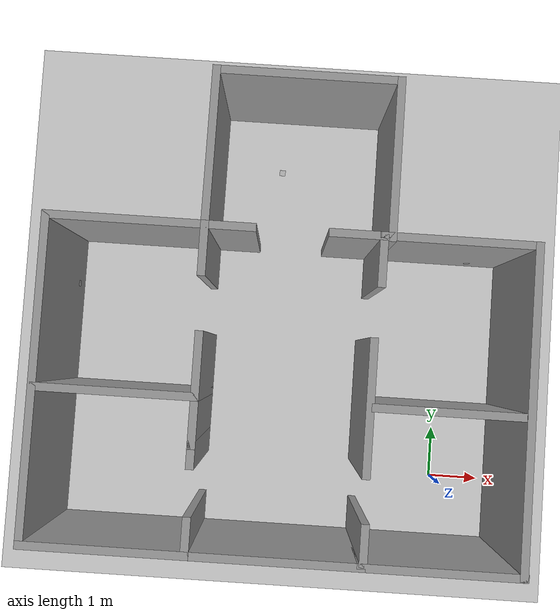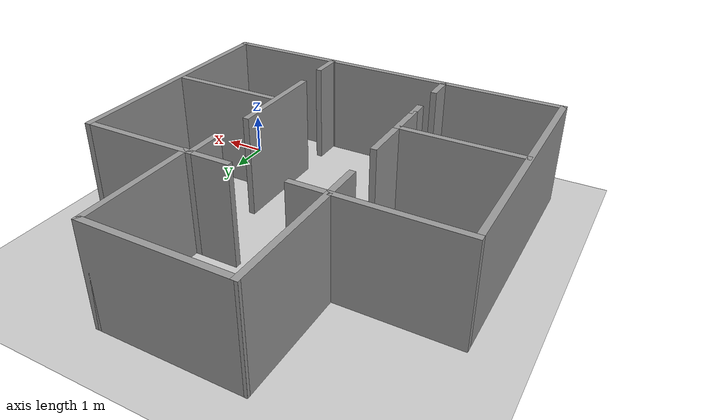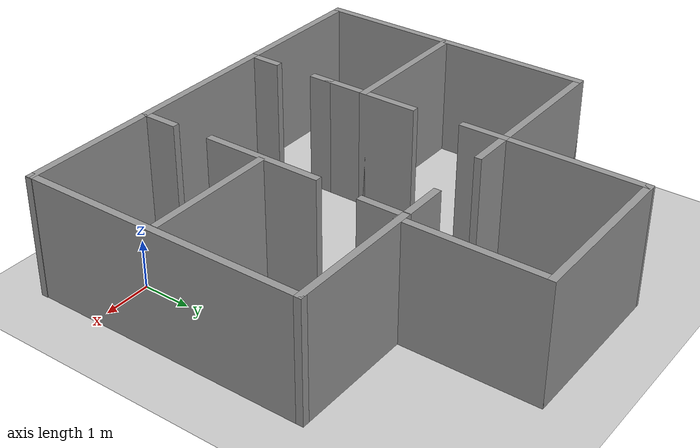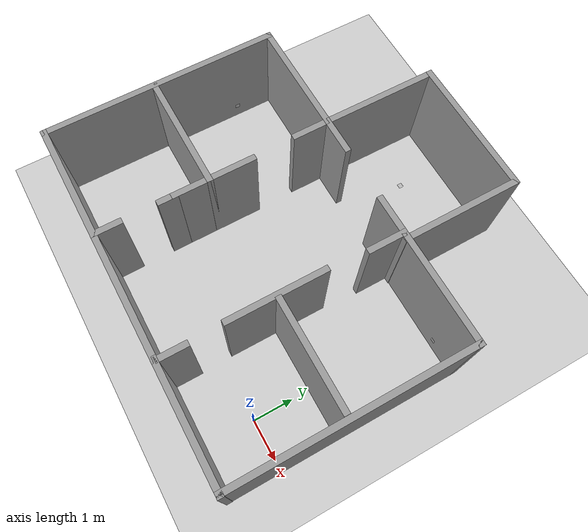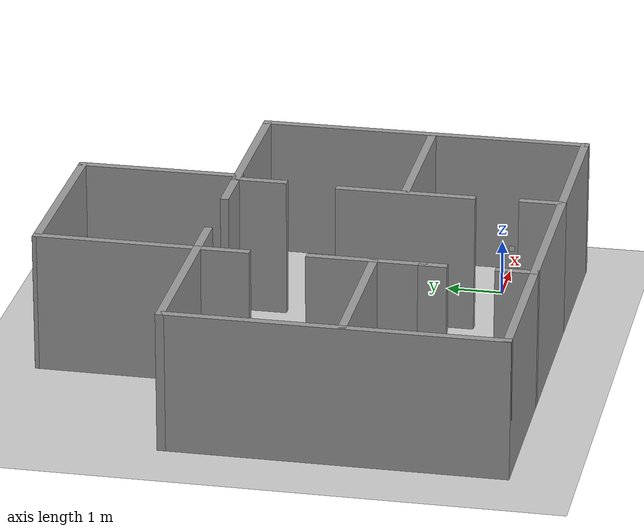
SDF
<sdf version="1.7">
 <world name="default">
  <light name="sun" type="directional">
   <pose>0 0 10 0 -0 0</pose>
   <diffuse>0.8 0.8 0.8 1</diffuse>
   <specular>0.2 0.2 0.2 1</specular>
   <attenuation>
    <range>1000</range>
    <constant>0.9</constant>
    <linear>0.01</linear>
    <quadratic>0.001</quadratic>
   </attenuation>
   <direction>-0.5 0.1 -0.9</direction>
   <spot><inner_angle>0</inner_angle><outer_angle>0</outer_angle><falloff>0</falloff></spot>
  </light>
  <model name="ground_plane">
   <static>1</static>
   <link name="link">
    <collision name="collision">
     <geometry><plane><normal>0 0 1</normal><size>100 100</size></plane></geometry>
     <surface>
      <contact><collide_bitmask>65535</collide_bitmask></contact>
      <friction><ode><mu>100</mu><mu2>50</mu2></ode></friction>
     </surface>
    </collision>
    <visual name="visual">
     <cast_shadows>0</cast_shadows>
     <geometry><plane><normal>0 0 1</normal><size>100 100</size></plane></geometry>
     <material>
      <script><uri>file://media/materials/scripts/gazebo.material</uri><name>Gazebo/Grey</name></script>
     </material>
    </visual>
   </link>
  </model>
  <gravity>0 0 -9.8</gravity>
  <magnetic_field>6e-06 2.3e-05 -4.2e-05</magnetic_field>
  <atmosphere type="adiabatic"/>
  <physics type="ode">
   <max_step_size>0.001</max_step_size>
   <real_time_factor>1</real_time_factor>
   <real_time_update_rate>1000</real_time_update_rate>
  </physics>
  <scene><ambient>0.4 0.4 0.4 1</ambient><background>0.7 0.7 0.7 1</background><shadows>1</shadows></scene>
  <spherical_coordinates>
   <surface_model>EARTH_WGS84</surface_model>
   <latitude_deg>0</latitude_deg>
   <longitude_deg>0</longitude_deg>
   <elevation>0</elevation>
   <heading_deg>0</heading_deg>
  </spherical_coordinates>
  <model name="World1">
   <pose>-3.20735 3.05419 0 0 -0 0</pose>
   <link name="Wall_102">
    <collision name="Wall_102_Collision">
     <geometry><box><size>3 0.15 2.5</size></box></geometry>
     <pose>0 0 1.25 0 -0 0</pose>
    </collision>
    <visual name="Wall_102_Visual">
     <pose>0 0 1.25 0 -0 0</pose>
     <geometry><box><size>3 0.15 2.5</size></box></geometry>
     <material>
      <script><uri>file://media/materials/scripts/gazebo.material</uri><name>Gazebo/Grey</name></script>
      <ambient>1 1 1 1</ambient>
     </material>
     <meta><layer>0</layer></meta>
    </visual>
    <pose>1.78589 2.91602 0 0 -0 -1.5708</pose>
   </link>
   <link name="Wall_12">
    <collision name="Wall_12_Collision">
     <geometry><box><size>3 0.15 2.5</size></box></geometry>
     <pose>0 0 1.25 0 -0 0</pose>
    </collision>
    <visual name="Wall_12_Visual">
     <pose>0 0 1.25 0 -0 0</pose>
     <geometry><box><size>3 0.15 2.5</size></box></geometry>
     <material>
      <script><uri>file://media/materials/scripts/gazebo.material</uri><name>Gazebo/Grey</name></script>
      <ambient>1 1 1 1</ambient>
     </material>
     <meta><layer>0</layer></meta>
    </visual>
    <pose>-2.96637 -1.56886 0 0 -0 0</pose>
   </link>
   <link name="Wall_13">
    <collision name="Wall_13_Collision">
     <geometry><box><size>1 0.15 2.5</size></box></geometry>
     <pose>0 0 1.25 0 -0 0</pose>
    </collision>
    <visual name="Wall_13_Visual">
     <pose>0 0 1.25 0 -0 0</pose>
     <geometry><box><size>1 0.15 2.5</size></box></geometry>
     <material>
      <script><uri>file://media/materials/scripts/gazebo.material</uri><name>Gazebo/Grey</name></script>
      <ambient>1 1 1 1</ambient>
     </material>
     <meta><layer>0</layer></meta>
    </visual>
    <pose>-1.54137 -1.99386 0 0 -0 -1.5708</pose>
   </link>
   <link name="Wall_17">
    <collision name="Wall_17_Collision">
     <geometry><box><size>3 0.15 2.5</size></box></geometry>
     <pose>0 0 1.25 0 -0 0</pose>
    </collision>
    <visual name="Wall_17_Visual">
     <pose>0 0 1.25 0 -0 0</pose>
     <geometry><box><size>3 0.15 2.5</size></box></geometry>
     <material>
      <script><uri>file://media/materials/scripts/gazebo.material</uri><name>Gazebo/Grey</name></script>
      <ambient>1 1 1 1</ambient>
     </material>
     <meta><layer>0</layer></meta>
    </visual>
    <pose>-3.0066 1.50851 0 0 -0 0</pose>
   </link>
   <link name="Wall_18">
    <collision name="Wall_18_Collision">
     <geometry><box><size>1 0.15 2.5</size></box></geometry>
     <pose>0 0 1.25 0 -0 0</pose>
    </collision>
    <visual name="Wall_18_Visual">
     <pose>0 0 1.25 0 -0 0</pose>
     <geometry><box><size>1 0.15 2.5</size></box></geometry>
     <material>
      <script><uri>file://media/materials/scripts/gazebo.material</uri><name>Gazebo/Grey</name></script>
      <ambient>1 1 1 1</ambient>
     </material>
     <meta><layer>0</layer></meta>
    </visual>
    <pose>-1.5816 1.08352 0 0 -0 -1.5708</pose>
   </link>
   <link name="Wall_20">
    <collision name="Wall_20_Collision">
     <geometry><box><size>1.25 0.15 2.5</size></box></geometry>
     <pose>0 0 1.25 0 -0 0</pose>
    </collision>
    <visual name="Wall_20_Visual">
     <pose>0 0 1.25 0 -0 0</pose>
     <geometry><box><size>1.25 0.15 2.5</size></box></geometry>
     <material>
      <script><uri>file://media/materials/scripts/gazebo.material</uri><name>Gazebo/Grey</name></script>
      <ambient>1 1 1 1</ambient>
     </material>
     <meta><layer>0</layer></meta>
    </visual>
    <pose>-1.54137 -1.01886 0 0 -0 1.5708</pose>
   </link>
   <link name="Wall_22">
    <collision name="Wall_22_Collision">
     <geometry><box><size>0.5 0.15 2.5</size></box></geometry>
     <pose>0 0 1.25 0 -0 0</pose>
    </collision>
    <visual name="Wall_22_Visual">
     <pose>0 0 1.25 0 -0 0</pose>
     <geometry><box><size>0.5 0.15 2.5</size></box></geometry>
     <material>
      <script><uri>file://media/materials/scripts/gazebo.material</uri><name>Gazebo/Grey</name></script>
      <ambient>1 1 1 1</ambient>
     </material>
     <meta><layer>0</layer></meta>
    </visual>
    <pose>-1.54137 -2.59386 0 0 -0 -1.5708</pose>
   </link>
   <link name="Wall_33">
    <collision name="Wall_33_Collision">
     <geometry><box><size>1 0.15 2.5</size></box></geometry>
     <pose>0 0 1.25 0 -0 0</pose>
    </collision>
    <visual name="Wall_33_Visual">
     <pose>0 0 1.25 0 -0 0</pose>
     <geometry><box><size>1 0.15 2.5</size></box></geometry>
     <material>
      <script><uri>file://media/materials/scripts/gazebo.material</uri><name>Gazebo/Grey</name></script>
      <ambient>1 1 1 1</ambient>
     </material>
     <meta><layer>0</layer></meta>
    </visual>
    <pose>-1.1566 1.50851 0 0 -0 0</pose>
   </link>
   <link name="Wall_42">
    <collision name="Wall_42_Collision">
     <geometry><box><size>0.75 0.15 2.5</size></box></geometry>
     <pose>0 0 1.25 0 -0 0</pose>
    </collision>
    <visual name="Wall_42_Visual">
     <pose>0 0 1.25 0 -0 0</pose>
     <geometry><box><size>0.75 0.15 2.5</size></box></geometry>
     <material>
      <script><uri>file://media/materials/scripts/gazebo.material</uri><name>Gazebo/Grey</name></script>
      <ambient>1 1 1 1</ambient>
     </material>
     <meta><layer>0</layer></meta>
    </visual>
    <pose>-1.5284 -4.04149 0 0 -0 1.5708</pose>
   </link>
   <link name="Wall_47">
    <collision name="Wall_47_Collision">
     <geometry><box><size>2.5 0.15 2.5</size></box></geometry>
     <pose>0 0 1.25 0 -0 0</pose>
    </collision>
    <visual name="Wall_47_Visual">
     <pose>0 0 1.25 0 -0 0</pose>
     <geometry><box><size>2.5 0.15 2.5</size></box></geometry>
     <material>
      <script><uri>file://media/materials/scripts/gazebo.material</uri><name>Gazebo/Grey</name></script>
      <ambient>1 1 1 1</ambient>
     </material>
     <meta><layer>0</layer></meta>
    </visual>
    <pose>1.56651 -1.56563 0 0 -0 -1.5708</pose>
   </link>
   <link name="Wall_49">
    <collision name="Wall_49_Collision">
     <geometry><box><size>0.75 0.15 2.5</size></box></geometry>
     <pose>0 0 1.25 0 -0 0</pose>
    </collision>
    <visual name="Wall_49_Visual">
     <pose>0 0 1.25 0 -0 0</pose>
     <geometry><box><size>0.75 0.15 2.5</size></box></geometry>
     <material>
      <script><uri>file://media/materials/scripts/gazebo.material</uri><name>Gazebo/Grey</name></script>
      <ambient>1 1 1 1</ambient>
     </material>
     <meta><layer>0</layer></meta>
    </visual>
    <pose>1.60149 -3.96245 0 0 -0 -1.5708</pose>
   </link>
   <link name="Wall_51">
    <collision name="Wall_51_Collision">
     <geometry><box><size>3.25 0.15 2.5</size></box></geometry>
     <pose>0 0 1.25 0 -0 0</pose>
    </collision>
    <visual name="Wall_51_Visual">
     <pose>0 0 1.25 0 -0 0</pose>
     <geometry><box><size>3.25 0.15 2.5</size></box></geometry>
     <material>
      <script><uri>file://media/materials/scripts/gazebo.material</uri><name>Gazebo/Grey</name></script>
      <ambient>1 1 1 1</ambient>
     </material>
     <meta><layer>0</layer></meta>
    </visual>
    <pose>0.0216 -4.34149 0 0 -0 0</pose>
   </link>
   <link name="Wall_62">
    <collision name="Wall_62_Collision">
     <geometry><box><size>1 0.15 2.5</size></box></geometry>
     <pose>0 0 1.25 0 -0 0</pose>
    </collision>
    <visual name="Wall_62_Visual">
     <pose>0 0 1.25 0 -0 0</pose>
     <geometry><box><size>1 0.15 2.5</size></box></geometry>
     <material>
      <script><uri>file://media/materials/scripts/gazebo.material</uri><name>Gazebo/Grey</name></script>
      <ambient>1 1 1 1</ambient>
     </material>
     <meta><layer>0</layer></meta>
    </visual>
    <pose>1.64156 1.08352 0 0 -0 -1.5708</pose>
   </link>
   <link name="Wall_72">
    <collision name="Wall_72_Collision">
     <geometry><box><size>2.75 0.15 2.5</size></box></geometry>
     <pose>0 0 1.25 0 -0 0</pose>
    </collision>
    <visual name="Wall_72_Visual">
     <pose>0 0 1.25 0 -0 0</pose>
     <geometry><box><size>2.75 0.15 2.5</size></box></geometry>
     <material>
      <script><uri>file://media/materials/scripts/gazebo.material</uri><name>Gazebo/Grey</name></script>
      <ambient>1 1 1 1</ambient>
     </material>
     <meta><layer>0</layer></meta>
    </visual>
    <pose>2.9678 -1.55134 0 0 -0 0</pose>
   </link>
   <link name="Wall_75">
    <collision name="Wall_75_Collision">
     <geometry><box><size>3 0.15 2.5</size></box></geometry>
     <pose>0 0 1.25 0 -0 0</pose>
    </collision>
    <visual name="Wall_75_Visual">
     <pose>0 0 1.25 0 -0 0</pose>
     <geometry><box><size>3 0.15 2.5</size></box></geometry>
     <material>
      <script><uri>file://media/materials/scripts/gazebo.material</uri><name>Gazebo/Grey</name></script>
      <ambient>1 1 1 1</ambient>
     </material>
     <meta><layer>0</layer></meta>
    </visual>
    <pose>2.9966 -4.34149 0 0 -0 0</pose>
   </link>
   <link name="Wall_76">
    <collision name="Wall_76_Collision">
     <geometry><box><size>0.16 0.15 2.5</size></box></geometry>
     <pose>0 0 1.25 0 -0 0</pose>
    </collision>
    <visual name="Wall_76_Visual">
     <pose>0 0 1.25 0 -0 0</pose>
     <geometry><box><size>0.16 0.15 2.5</size></box></geometry>
     <material>
      <script><uri>file://media/materials/scripts/gazebo.material</uri><name>Gazebo/Grey</name></script>
      <ambient>0 0 0 1</ambient>
     </material>
     <meta><layer>0</layer></meta>
    </visual>
    <pose>4.4266 -4.34149 0 0 -0 0</pose>
   </link>
   <link name="Wall_77">
    <collision name="Wall_77_Collision">
     <geometry><box><size>6 0.15 2.5</size></box></geometry>
     <pose>0 0 1.25 0 -0 0</pose>
    </collision>
    <visual name="Wall_77_Visual">
     <pose>0 0 1.25 0 -0 0</pose>
     <geometry><box><size>6 0.15 2.5</size></box></geometry>
     <material>
      <script><uri>file://media/materials/scripts/gazebo.material</uri><name>Gazebo/Grey</name></script>
      <ambient>1 1 1 1</ambient>
     </material>
     <meta><layer>0</layer></meta>
    </visual>
    <pose>4.4216 -1.41649 0 0 -0 1.5708</pose>
   </link>
   <link name="Wall_79">
    <collision name="Wall_79_Collision">
     <geometry><box><size>2.91261 0.15 2.5</size></box></geometry>
     <pose>0 0 1.25 0 -0 0</pose>
    </collision>
    <visual name="Wall_79_Visual">
     <pose>0 0 1.25 0 -0 0</pose>
     <geometry><box><size>2.91261 0.15 2.5</size></box></geometry>
     <material>
      <script><uri>file://media/materials/scripts/gazebo.material</uri><name>Gazebo/Grey</name></script>
      <ambient>1 1 1 1</ambient>
     </material>
     <meta><layer>0</layer></meta>
    </visual>
    <pose>3.04033 1.50851 0 0 -0 3.14159</pose>
   </link>
   <link name="Wall_8">
    <collision name="Wall_8_Collision">
     <geometry><box><size>6 0.15 2.5</size></box></geometry>
     <pose>0 0 1.25 0 -0 0</pose>
    </collision>
    <visual name="Wall_8_Visual">
     <pose>0 0 1.25 0 -0 0</pose>
     <geometry><box><size>6 0.15 2.5</size></box></geometry>
     <material>
      <script><uri>file://media/materials/scripts/gazebo.material</uri><name>Gazebo/Grey</name></script>
      <ambient>1 1 1 1</ambient>
     </material>
     <meta><layer>0</layer></meta>
    </visual>
    <pose>-4.4316 -1.41649 0 0 -0 -1.5708</pose>
   </link>
   <link name="Wall_84">
    <collision name="Wall_84_Collision">
     <geometry><box><size>1.08745 0.15 2.5</size></box></geometry>
     <pose>0 0 1.25 0 -0 0</pose>
    </collision>
    <visual name="Wall_84_Visual">
     <pose>0 0 1.25 0 -0 0</pose>
     <geometry><box><size>1.08745 0.15 2.5</size></box></geometry>
     <material>
      <script><uri>file://media/materials/scripts/gazebo.material</uri><name>Gazebo/Grey</name></script>
      <ambient>1 1 1 1</ambient>
     </material>
     <meta><layer>0</layer></meta>
    </visual>
    <pose>1.19033 1.50851 0 0 -0 3.14159</pose>
   </link>
   <link name="Wall_9">
    <collision name="Wall_9_Collision">
     <geometry><box><size>3.0532 0.15 2.5</size></box></geometry>
     <pose>0 0 1.25 0 -0 0</pose>
    </collision>
    <visual name="Wall_9_Visual">
     <pose>0 0 1.25 0 -0 0</pose>
     <geometry><box><size>3.0532 0.15 2.5</size></box></geometry>
     <material>
      <script><uri>file://media/materials/scripts/gazebo.material</uri><name>Gazebo/Grey</name></script>
      <ambient>1 1 1 1</ambient>
     </material>
     <meta><layer>0</layer></meta>
    </visual>
    <pose>-2.98 -4.34149 0 0 -0 0</pose>
   </link>
   <link name="Wall_98">
    <collision name="Wall_98_Collision">
     <geometry><box><size>2.98256 0.15 2.5</size></box></geometry>
     <pose>0 0 1.25 0 -0 0</pose>
    </collision>
    <visual name="Wall_98_Visual">
     <pose>0 0 1.25 0 -0 0</pose>
     <geometry><box><size>2.98256 0.15 2.5</size></box></geometry>
     <material>
      <script><uri>file://media/materials/scripts/gazebo.material</uri><name>Gazebo/Grey</name></script>
      <ambient>1 1 1 1</ambient>
     </material>
     <meta><layer>0</layer></meta>
    </visual>
    <pose>-1.57285 2.92477 0 0 -0 1.56462</pose>
   </link>
   <link name="Wall_99">
    <collision name="Wall_99_Collision">
     <geometry><box><size>3.5 0.15 2.5</size></box></geometry>
     <pose>0 0 1.25 0 -0 0</pose>
    </collision>
    <visual name="Wall_99_Visual">
     <pose>0 0 1.25 0 -0 0</pose>
     <geometry><box><size>3.5 0.15 2.5</size></box></geometry>
     <material>
      <script><uri>file://media/materials/scripts/gazebo.material</uri><name>Gazebo/Grey</name></script>
      <ambient>1 1 1 1</ambient>
     </material>
     <meta><layer>0</layer></meta>
    </visual>
    <pose>0.11089 4.34102 0 0 -0 0</pose>
   </link>
   <static>1</static>
  </model>
  <include><uri>model://marker0</uri><pose>1.13 0 0.4 0 1.5707 0</pose></include>
  <include><uri>model://marker1</uri><pose>-5 -1.2 0.4 1.5707 -1.5707 3.14</pose></include>
  <include><uri>model://marker2</uri><pose>-7.55 3.54 0.4 1.57 1.5707 -1.5707</pose></include>
  <include><uri>model://marker3</uri><pose>0.45 4.48 0.4 0 1.5707 1.5707</pose></include>
  <include><uri>model://marker4</uri><pose>-3.5 6.24 0 0.0 0 0.0</pose></include>
 </world>
</sdf>

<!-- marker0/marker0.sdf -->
<sdf version="1.4">
  <model name="marker0">
    <static>1</static>
    <link name="marker">
      <gravity>false</gravity>
      <visual name="visual">
        <geometry>
          <box>
            <size>0.10 0.10 0.001</size>
            <!-- SIZE OF THE MARKER + MARGIN -->
          </box>
        </geometry>
        <material>
          <script>
	    <uri>model://marker0/material/scripts</uri>
	    <uri>model://marker0/material/textures</uri>
            <name>Aruco/marker0</name>
          </script>
        </material>
      </visual>
      <collision name="collision">
        <geometry>
          <box>
            <size>0.10 0.10 0.02</size>
            <!-- SIZE OF THE MARKER + MARGIN -->
          </box>
        </geometry>
      </collision>
       <self_collide>1</self_collide>
      <kinematic>0</kinematic>
      <gravity>0</gravity>
    </link>
  </model>
</sdf>

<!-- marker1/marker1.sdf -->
<sdf version="1.4">
  <model name="marker1">
    <static>1</static>
    <link name="marker">
      <gravity>false</gravity>
      <visual name="visual">
        <geometry>
          <box>
            <size>0.12 0.12 0.001</size>
            <!-- SIZE OF THE MARKER + MARGIN -->
          </box>
        </geometry>
        <material>
          <script>
	    <uri>model://marker1/material/scripts</uri>
	    <uri>model://marker1/material/textures</uri>
            <name>Aruco/marker1</name>
          </script>
        </material>
      </visual>
      <collision name="collision">
        <geometry>
          <box>
            <size>0.12 0.12 0.02</size>
            <!-- SIZE OF THE MARKER + MARGIN -->
          </box>
        </geometry>
      </collision>
           <self_collide>1</self_collide>
      <kinematic>0</kinematic>
      <gravity>0</gravity>
    </link>
  </model>
</sdf>

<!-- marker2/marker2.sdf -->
<sdf version="1.4">
  <model name="marker2">
    <static>1</static>
    <link name="marker">
      <gravity>false</gravity>
      <visual name="visual">
        <geometry>
          <box>
            <size>0.12 0.12 0.001</size>
            <!-- SIZE OF THE MARKER + MARGIN -->
          </box>
        </geometry>
        <material>
          <script>
	    <uri>model://marker2/material/scripts</uri>
	    <uri>model://marker2/material/textures</uri>
            <name>Aruco/marker2</name>
          </script>
        </material>
      </visual>
      <collision name="collision">
        <geometry>
          <box>
            <size>0.12 0.12 0.02</size>
            <!-- SIZE OF THE MARKER + MARGIN -->
          </box>
        </geometry>
      </collision>
           <self_collide>1</self_collide>
      <kinematic>0</kinematic>
      <gravity>0</gravity>
    </link>
  </model>
</sdf>

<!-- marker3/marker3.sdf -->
<sdf version="1.4">
  <model name="marker3">
    <static>1</static>
    <link name="marker">
      <gravity>false</gravity>
      <visual name="visual">
        <geometry>
          <box>
            <size>0.12 0.12 0.001</size>
            <!-- SIZE OF THE MARKER + MARGIN -->
          </box>
        </geometry>
        <material>
          <script>
	    <uri>model://marker3/material/scripts</uri>
	    <uri>model://marker3/material/textures</uri>
            <name>Aruco/marker3</name>
          </script>
        </material>
      </visual>
      <collision name="collision">
        <geometry>
          <box>
            <size>0.12 0.12 0.02</size>
            <!-- SIZE OF THE MARKER + MARGIN -->
          </box>
        </geometry>
      </collision>
          <self_collide>1</self_collide>
      <kinematic>0</kinematic>
      <gravity>0</gravity>
    </link>
  </model>
</sdf>

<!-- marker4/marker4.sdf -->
<sdf version="1.4">
  <model name="marker4">
    <static>1</static>
    <link name="marker">
      <gravity>false</gravity>
      <visual name="visual">
        <geometry>
          <box>
            <size>0.12 0.12 0.001</size>
            <!-- SIZE OF THE MARKER + MARGIN -->
          </box>
        </geometry>
        <material>
          <script>
	    <uri>model://marker4/material/scripts</uri>
	    <uri>model://marker4/material/textures</uri>
            <name>Aruco/marker4</name>
          </script>
        </material>
      </visual>
      <collision name="collision">
        <geometry>
          <box>
            <size>0.12 0.12 0.02</size>
            <!-- SIZE OF THE MARKER + MARGIN -->
          </box>
        </geometry>
      </collision>
          <self_collide>1</self_collide>
      <kinematic>0</kinematic>
      <gravity>1</gravity>
    </link>
  </model>
</sdf>
